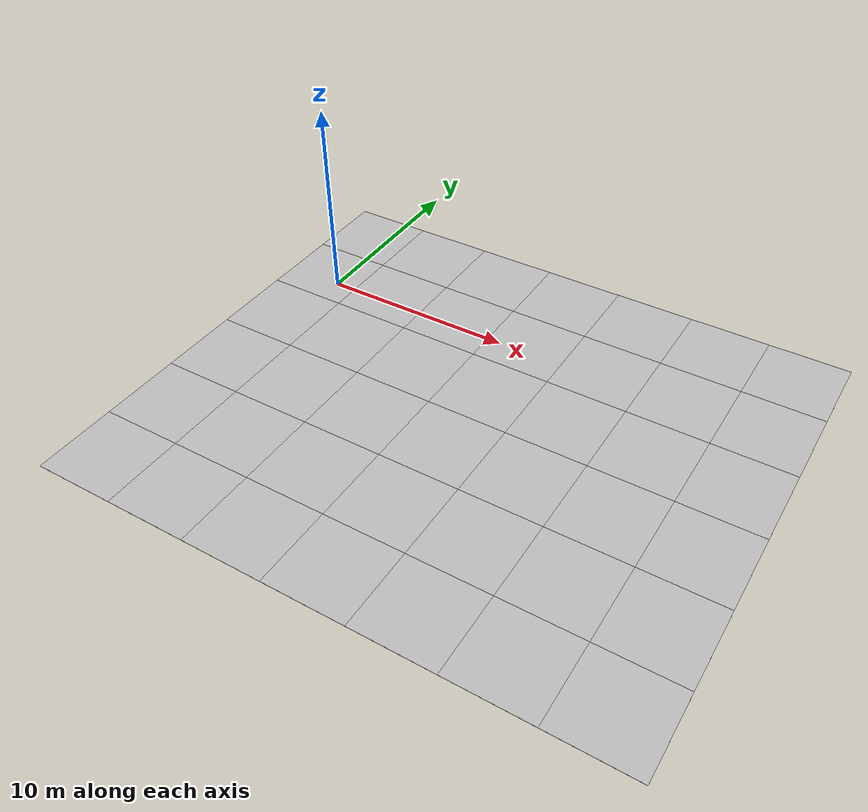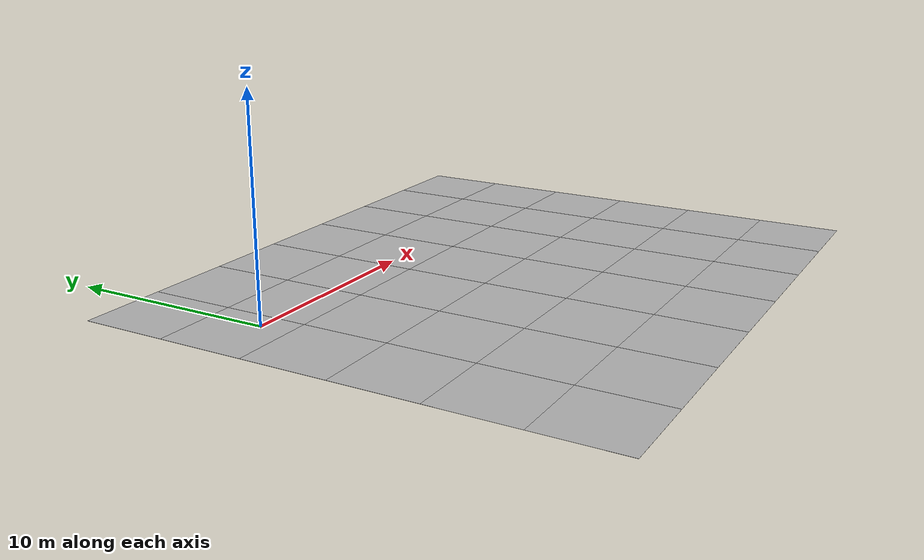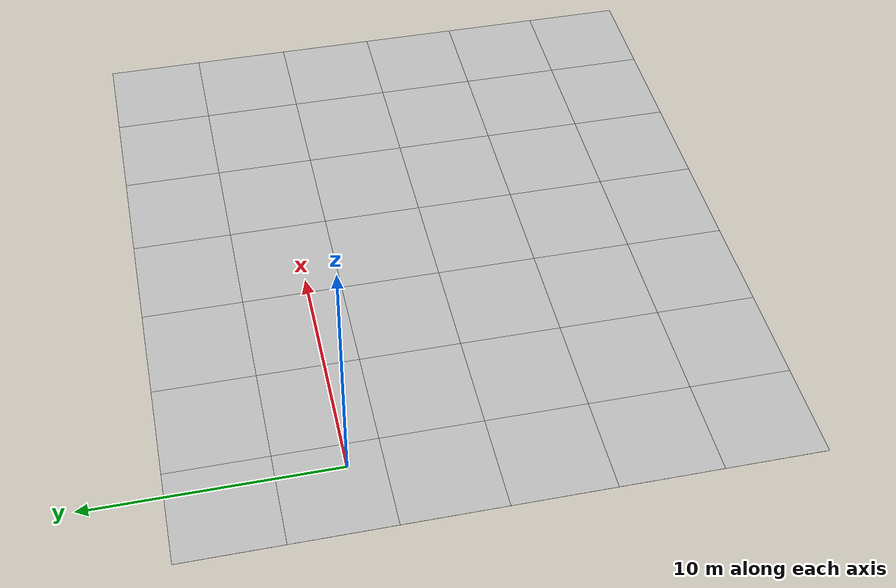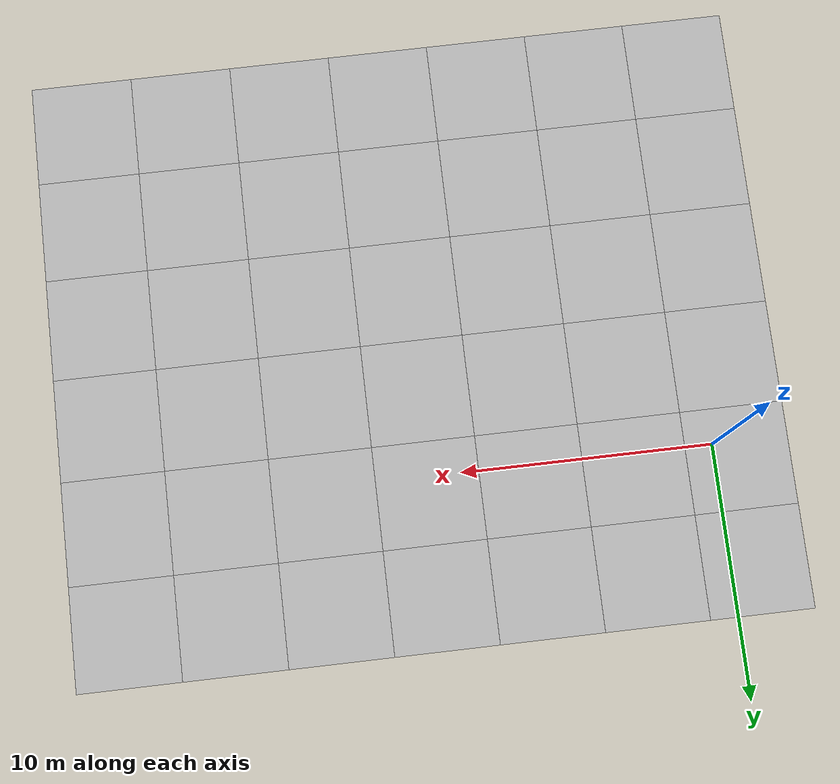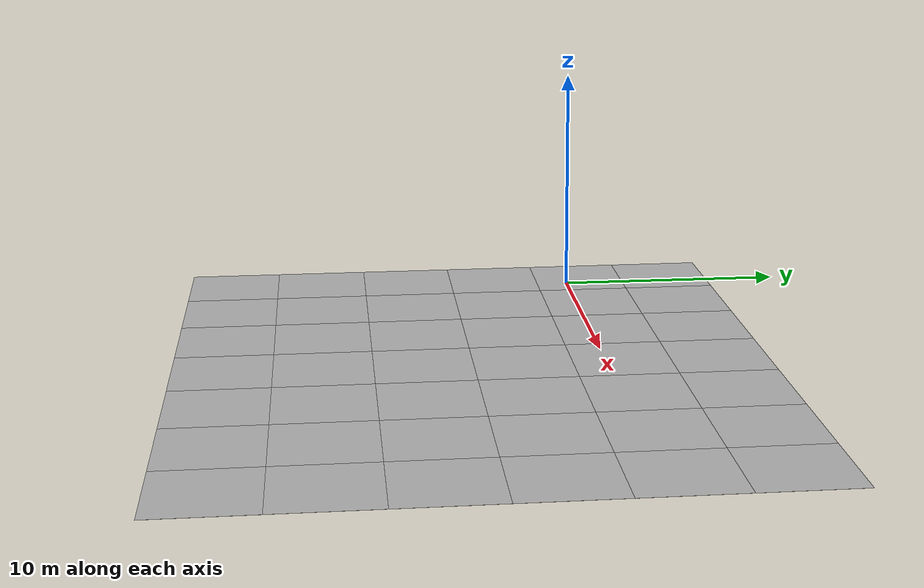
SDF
<sdf version='1.6'><world name='default'>
    <light name='sun_light' type='directional'>
      <pose frame=''>0 0 10 0 -0 0</pose>
      <diffuse>0.5 0.5 0.5 1</diffuse>
      <specular>0.1 0.1 0.1 1</specular>
      <direction>0.1 0.1 -0.9</direction>
      <attenuation>
        <range>20</range>
        <constant>0.5</constant>
        <linear>0.01</linear>
        <quadratic>0.001</quadratic>
      </attenuation>
      <cast_shadows>1</cast_shadows>
    </light>

    <model name='Tile/0-0'>
      <static>1</static>
      <link name='link'>
        <collision name='collision'>
          <geometry>
            <plane>
              <normal>0 0 1</normal>
              <size>4.096 4.096</size>
            </plane>
          </geometry>
          <surface>
            <friction>
              <ode>
                <mu>100</mu>
                <mu2>50</mu2>
              </ode>
              <torsional>
                <ode/>
              </torsional>
            </friction>
            <contact>
              <ode/>
            </contact>
            <bounce/>
          </surface>
          <max_contacts>10</max_contacts>
        </collision>
        <visual name='visual'>
          <cast_shadows>0</cast_shadows>
          <geometry>
            <plane>
              <normal>0 0 1</normal>
              <size>4.096 4.096</size>
            </plane>
          </geometry>
          <material>
            <script>
              <uri>file://materials/scripts</uri>
              <uri>file://materials/textures</uri>
              <name>Tile/5eab350b8220ac9944dbdfa4ac3288c7c17e24c3bf5df0dfcf6173d64dae00a1</name>
            </script>
          </material>
        </visual>
        <self_collide>0</self_collide>
        <enable_wind>0</enable_wind>
        <kinematic>0</kinematic>
      </link>
      <pose frame=''>-0.952 -15.739495373796553 0 0 -0 0</pose>
    </model>

    <model name='Tile/0-1'>
      <static>1</static>
      <link name='link'>
        <collision name='collision'>
          <geometry>
            <plane>
              <normal>0 0 1</normal>
              <size>4.096 4.096</size>
            </plane>
          </geometry>
          <surface>
            <friction>
              <ode>
                <mu>100</mu>
                <mu2>50</mu2>
              </ode>
              <torsional>
                <ode/>
              </torsional>
            </friction>
            <contact>
              <ode/>
            </contact>
            <bounce/>
          </surface>
          <max_contacts>10</max_contacts>
        </collision>
        <visual name='visual'>
          <cast_shadows>0</cast_shadows>
          <geometry>
            <plane>
              <normal>0 0 1</normal>
              <size>4.096 4.096</size>
            </plane>
          </geometry>
          <material>
            <script>
              <uri>file://materials/scripts</uri>
              <uri>file://materials/textures</uri>
              <name>Tile/5eab350b8220ac9944dbdfa4ac3288c7c17e24c3bf5df0dfcf6173d64dae00a1</name>
            </script>
          </material>
        </visual>
        <self_collide>0</self_collide>
        <enable_wind>0</enable_wind>
        <kinematic>0</kinematic>
      </link>
      <pose frame=''>-0.952 -11.643495373796553 0 0 -0 0</pose>
    </model>

    <model name='Tile/0-2'>
      <static>1</static>
      <link name='link'>
        <collision name='collision'>
          <geometry>
            <plane>
              <normal>0 0 1</normal>
              <size>4.096 4.096</size>
            </plane>
          </geometry>
          <surface>
            <friction>
              <ode>
                <mu>100</mu>
                <mu2>50</mu2>
              </ode>
              <torsional>
                <ode/>
              </torsional>
            </friction>
            <contact>
              <ode/>
            </contact>
            <bounce/>
          </surface>
          <max_contacts>10</max_contacts>
        </collision>
        <visual name='visual'>
          <cast_shadows>0</cast_shadows>
          <geometry>
            <plane>
              <normal>0 0 1</normal>
              <size>4.096 4.096</size>
            </plane>
          </geometry>
          <material>
            <script>
              <uri>file://materials/scripts</uri>
              <uri>file://materials/textures</uri>
              <name>Tile/5eab350b8220ac9944dbdfa4ac3288c7c17e24c3bf5df0dfcf6173d64dae00a1</name>
            </script>
          </material>
        </visual>
        <self_collide>0</self_collide>
        <enable_wind>0</enable_wind>
        <kinematic>0</kinematic>
      </link>
      <pose frame=''>-0.952 -7.547495373796552 0 0 -0 0</pose>
    </model>

    <model name='Tile/0-3'>
      <static>1</static>
      <link name='link'>
        <collision name='collision'>
          <geometry>
            <plane>
              <normal>0 0 1</normal>
              <size>4.096 4.096</size>
            </plane>
          </geometry>
          <surface>
            <friction>
              <ode>
                <mu>100</mu>
                <mu2>50</mu2>
              </ode>
              <torsional>
                <ode/>
              </torsional>
            </friction>
            <contact>
              <ode/>
            </contact>
            <bounce/>
          </surface>
          <max_contacts>10</max_contacts>
        </collision>
        <visual name='visual'>
          <cast_shadows>0</cast_shadows>
          <geometry>
            <plane>
              <normal>0 0 1</normal>
              <size>4.096 4.096</size>
            </plane>
          </geometry>
          <material>
            <script>
              <uri>file://materials/scripts</uri>
              <uri>file://materials/textures</uri>
              <name>Tile/5eab350b8220ac9944dbdfa4ac3288c7c17e24c3bf5df0dfcf6173d64dae00a1</name>
            </script>
          </material>
        </visual>
        <self_collide>0</self_collide>
        <enable_wind>0</enable_wind>
        <kinematic>0</kinematic>
      </link>
      <pose frame=''>-0.952 -3.4514953737965524 0 0 -0 0</pose>
    </model>

    <model name='Tile/0-4'>
      <static>1</static>
      <link name='link'>
        <collision name='collision'>
          <geometry>
            <plane>
              <normal>0 0 1</normal>
              <size>4.096 4.096</size>
            </plane>
          </geometry>
          <surface>
            <friction>
              <ode>
                <mu>100</mu>
                <mu2>50</mu2>
              </ode>
              <torsional>
                <ode/>
              </torsional>
            </friction>
            <contact>
              <ode/>
            </contact>
            <bounce/>
          </surface>
          <max_contacts>10</max_contacts>
        </collision>
        <visual name='visual'>
          <cast_shadows>0</cast_shadows>
          <geometry>
            <plane>
              <normal>0 0 1</normal>
              <size>4.096 4.096</size>
            </plane>
          </geometry>
          <material>
            <script>
              <uri>file://materials/scripts</uri>
              <uri>file://materials/textures</uri>
              <name>Tile/14b8432d31a1d6fac1c87e27125f163216128f25f7a4fc26318bab22ac04c2e1</name>
            </script>
          </material>
        </visual>
        <self_collide>0</self_collide>
        <enable_wind>0</enable_wind>
        <kinematic>0</kinematic>
      </link>
      <pose frame=''>-0.952 0.644504626203446 0 0 -0 0</pose>
    </model>

    <model name='Tile/0-5'>
      <static>1</static>
      <link name='link'>
        <collision name='collision'>
          <geometry>
            <plane>
              <normal>0 0 1</normal>
              <size>4.096 4.096</size>
            </plane>
          </geometry>
          <surface>
            <friction>
              <ode>
                <mu>100</mu>
                <mu2>50</mu2>
              </ode>
              <torsional>
                <ode/>
              </torsional>
            </friction>
            <contact>
              <ode/>
            </contact>
            <bounce/>
          </surface>
          <max_contacts>10</max_contacts>
        </collision>
        <visual name='visual'>
          <cast_shadows>0</cast_shadows>
          <geometry>
            <plane>
              <normal>0 0 1</normal>
              <size>4.096 4.096</size>
            </plane>
          </geometry>
          <material>
            <script>
              <uri>file://materials/scripts</uri>
              <uri>file://materials/textures</uri>
              <name>Tile/5eab350b8220ac9944dbdfa4ac3288c7c17e24c3bf5df0dfcf6173d64dae00a1</name>
            </script>
          </material>
        </visual>
        <self_collide>0</self_collide>
        <enable_wind>0</enable_wind>
        <kinematic>0</kinematic>
      </link>
      <pose frame=''>-0.952 4.740504626203446 0 0 -0 0</pose>
    </model>

    <model name='Tile/1-0'>
      <static>1</static>
      <link name='link'>
        <collision name='collision'>
          <geometry>
            <plane>
              <normal>0 0 1</normal>
              <size>4.096 4.096</size>
            </plane>
          </geometry>
          <surface>
            <friction>
              <ode>
                <mu>100</mu>
                <mu2>50</mu2>
              </ode>
              <torsional>
                <ode/>
              </torsional>
            </friction>
            <contact>
              <ode/>
            </contact>
            <bounce/>
          </surface>
          <max_contacts>10</max_contacts>
        </collision>
        <visual name='visual'>
          <cast_shadows>0</cast_shadows>
          <geometry>
            <plane>
              <normal>0 0 1</normal>
              <size>4.096 4.096</size>
            </plane>
          </geometry>
          <material>
            <script>
              <uri>file://materials/scripts</uri>
              <uri>file://materials/textures</uri>
              <name>Tile/5eab350b8220ac9944dbdfa4ac3288c7c17e24c3bf5df0dfcf6173d64dae00a1</name>
            </script>
          </material>
        </visual>
        <self_collide>0</self_collide>
        <enable_wind>0</enable_wind>
        <kinematic>0</kinematic>
      </link>
      <pose frame=''>3.144 -15.739495373796553 0 0 -0 0</pose>
    </model>

    <model name='Tile/1-1'>
      <static>1</static>
      <link name='link'>
        <collision name='collision'>
          <geometry>
            <plane>
              <normal>0 0 1</normal>
              <size>4.096 4.096</size>
            </plane>
          </geometry>
          <surface>
            <friction>
              <ode>
                <mu>100</mu>
                <mu2>50</mu2>
              </ode>
              <torsional>
                <ode/>
              </torsional>
            </friction>
            <contact>
              <ode/>
            </contact>
            <bounce/>
          </surface>
          <max_contacts>10</max_contacts>
        </collision>
        <visual name='visual'>
          <cast_shadows>0</cast_shadows>
          <geometry>
            <plane>
              <normal>0 0 1</normal>
              <size>4.096 4.096</size>
            </plane>
          </geometry>
          <material>
            <script>
              <uri>file://materials/scripts</uri>
              <uri>file://materials/textures</uri>
              <name>Tile/5eab350b8220ac9944dbdfa4ac3288c7c17e24c3bf5df0dfcf6173d64dae00a1</name>
            </script>
          </material>
        </visual>
        <self_collide>0</self_collide>
        <enable_wind>0</enable_wind>
        <kinematic>0</kinematic>
      </link>
      <pose frame=''>3.144 -11.643495373796553 0 0 -0 0</pose>
    </model>

    <model name='Tile/1-2'>
      <static>1</static>
      <link name='link'>
        <collision name='collision'>
          <geometry>
            <plane>
              <normal>0 0 1</normal>
              <size>4.096 4.096</size>
            </plane>
          </geometry>
          <surface>
            <friction>
              <ode>
                <mu>100</mu>
                <mu2>50</mu2>
              </ode>
              <torsional>
                <ode/>
              </torsional>
            </friction>
            <contact>
              <ode/>
            </contact>
            <bounce/>
          </surface>
          <max_contacts>10</max_contacts>
        </collision>
        <visual name='visual'>
          <cast_shadows>0</cast_shadows>
          <geometry>
            <plane>
              <normal>0 0 1</normal>
              <size>4.096 4.096</size>
            </plane>
          </geometry>
          <material>
            <script>
              <uri>file://materials/scripts</uri>
              <uri>file://materials/textures</uri>
              <name>Tile/5eab350b8220ac9944dbdfa4ac3288c7c17e24c3bf5df0dfcf6173d64dae00a1</name>
            </script>
          </material>
        </visual>
        <self_collide>0</self_collide>
        <enable_wind>0</enable_wind>
        <kinematic>0</kinematic>
      </link>
      <pose frame=''>3.144 -7.547495373796552 0 0 -0 0</pose>
    </model>

    <model name='Tile/1-3'>
      <static>1</static>
      <link name='link'>
        <collision name='collision'>
          <geometry>
            <plane>
              <normal>0 0 1</normal>
              <size>4.096 4.096</size>
            </plane>
          </geometry>
          <surface>
            <friction>
              <ode>
                <mu>100</mu>
                <mu2>50</mu2>
              </ode>
              <torsional>
                <ode/>
              </torsional>
            </friction>
            <contact>
              <ode/>
            </contact>
            <bounce/>
          </surface>
          <max_contacts>10</max_contacts>
        </collision>
        <visual name='visual'>
          <cast_shadows>0</cast_shadows>
          <geometry>
            <plane>
              <normal>0 0 1</normal>
              <size>4.096 4.096</size>
            </plane>
          </geometry>
          <material>
            <script>
              <uri>file://materials/scripts</uri>
              <uri>file://materials/textures</uri>
              <name>Tile/5eab350b8220ac9944dbdfa4ac3288c7c17e24c3bf5df0dfcf6173d64dae00a1</name>
            </script>
          </material>
        </visual>
        <self_collide>0</self_collide>
        <enable_wind>0</enable_wind>
        <kinematic>0</kinematic>
      </link>
      <pose frame=''>3.144 -3.4514953737965524 0 0 -0 0</pose>
    </model>

    <model name='Tile/1-4'>
      <static>1</static>
      <link name='link'>
        <collision name='collision'>
          <geometry>
            <plane>
              <normal>0 0 1</normal>
              <size>4.096 4.096</size>
            </plane>
          </geometry>
          <surface>
            <friction>
              <ode>
                <mu>100</mu>
                <mu2>50</mu2>
              </ode>
              <torsional>
                <ode/>
              </torsional>
            </friction>
            <contact>
              <ode/>
            </contact>
            <bounce/>
          </surface>
          <max_contacts>10</max_contacts>
        </collision>
        <visual name='visual'>
          <cast_shadows>0</cast_shadows>
          <geometry>
            <plane>
              <normal>0 0 1</normal>
              <size>4.096 4.096</size>
            </plane>
          </geometry>
          <material>
            <script>
              <uri>file://materials/scripts</uri>
              <uri>file://materials/textures</uri>
              <name>Tile/878bee74b3ee028b9e9a00e876ac14918a3bb0f2ab732c710214c3dfcfb4f7a6</name>
            </script>
          </material>
        </visual>
        <self_collide>0</self_collide>
        <enable_wind>0</enable_wind>
        <kinematic>0</kinematic>
      </link>
      <pose frame=''>3.144 0.644504626203446 0 0 -0 0</pose>
    </model>

    <model name='Tile/1-5'>
      <static>1</static>
      <link name='link'>
        <collision name='collision'>
          <geometry>
            <plane>
              <normal>0 0 1</normal>
              <size>4.096 4.096</size>
            </plane>
          </geometry>
          <surface>
            <friction>
              <ode>
                <mu>100</mu>
                <mu2>50</mu2>
              </ode>
              <torsional>
                <ode/>
              </torsional>
            </friction>
            <contact>
              <ode/>
            </contact>
            <bounce/>
          </surface>
          <max_contacts>10</max_contacts>
        </collision>
        <visual name='visual'>
          <cast_shadows>0</cast_shadows>
          <geometry>
            <plane>
              <normal>0 0 1</normal>
              <size>4.096 4.096</size>
            </plane>
          </geometry>
          <material>
            <script>
              <uri>file://materials/scripts</uri>
              <uri>file://materials/textures</uri>
              <name>Tile/5eab350b8220ac9944dbdfa4ac3288c7c17e24c3bf5df0dfcf6173d64dae00a1</name>
            </script>
          </material>
        </visual>
        <self_collide>0</self_collide>
        <enable_wind>0</enable_wind>
        <kinematic>0</kinematic>
      </link>
      <pose frame=''>3.144 4.740504626203446 0 0 -0 0</pose>
    </model>

    <model name='Tile/2-0'>
      <static>1</static>
      <link name='link'>
        <collision name='collision'>
          <geometry>
            <plane>
              <normal>0 0 1</normal>
              <size>4.096 4.096</size>
            </plane>
          </geometry>
          <surface>
            <friction>
              <ode>
                <mu>100</mu>
                <mu2>50</mu2>
              </ode>
              <torsional>
                <ode/>
              </torsional>
            </friction>
            <contact>
              <ode/>
            </contact>
            <bounce/>
          </surface>
          <max_contacts>10</max_contacts>
        </collision>
        <visual name='visual'>
          <cast_shadows>0</cast_shadows>
          <geometry>
            <plane>
              <normal>0 0 1</normal>
              <size>4.096 4.096</size>
            </plane>
          </geometry>
          <material>
            <script>
              <uri>file://materials/scripts</uri>
              <uri>file://materials/textures</uri>
              <name>Tile/5eab350b8220ac9944dbdfa4ac3288c7c17e24c3bf5df0dfcf6173d64dae00a1</name>
            </script>
          </material>
        </visual>
        <self_collide>0</self_collide>
        <enable_wind>0</enable_wind>
        <kinematic>0</kinematic>
      </link>
      <pose frame=''>7.24 -15.739495373796553 0 0 -0 0</pose>
    </model>

    <model name='Tile/2-1'>
      <static>1</static>
      <link name='link'>
        <collision name='collision'>
          <geometry>
            <plane>
              <normal>0 0 1</normal>
              <size>4.096 4.096</size>
            </plane>
          </geometry>
          <surface>
            <friction>
              <ode>
                <mu>100</mu>
                <mu2>50</mu2>
              </ode>
              <torsional>
                <ode/>
              </torsional>
            </friction>
            <contact>
              <ode/>
            </contact>
            <bounce/>
          </surface>
          <max_contacts>10</max_contacts>
        </collision>
        <visual name='visual'>
          <cast_shadows>0</cast_shadows>
          <geometry>
            <plane>
              <normal>0 0 1</normal>
              <size>4.096 4.096</size>
            </plane>
          </geometry>
          <material>
            <script>
              <uri>file://materials/scripts</uri>
              <uri>file://materials/textures</uri>
              <name>Tile/5eab350b8220ac9944dbdfa4ac3288c7c17e24c3bf5df0dfcf6173d64dae00a1</name>
            </script>
          </material>
        </visual>
        <self_collide>0</self_collide>
        <enable_wind>0</enable_wind>
        <kinematic>0</kinematic>
      </link>
      <pose frame=''>7.24 -11.643495373796553 0 0 -0 0</pose>
    </model>

    <model name='Tile/2-2'>
      <static>1</static>
      <link name='link'>
        <collision name='collision'>
          <geometry>
            <plane>
              <normal>0 0 1</normal>
              <size>4.096 4.096</size>
            </plane>
          </geometry>
          <surface>
            <friction>
              <ode>
                <mu>100</mu>
                <mu2>50</mu2>
              </ode>
              <torsional>
                <ode/>
              </torsional>
            </friction>
            <contact>
              <ode/>
            </contact>
            <bounce/>
          </surface>
          <max_contacts>10</max_contacts>
        </collision>
        <visual name='visual'>
          <cast_shadows>0</cast_shadows>
          <geometry>
            <plane>
              <normal>0 0 1</normal>
              <size>4.096 4.096</size>
            </plane>
          </geometry>
          <material>
            <script>
              <uri>file://materials/scripts</uri>
              <uri>file://materials/textures</uri>
              <name>Tile/5eab350b8220ac9944dbdfa4ac3288c7c17e24c3bf5df0dfcf6173d64dae00a1</name>
            </script>
          </material>
        </visual>
        <self_collide>0</self_collide>
        <enable_wind>0</enable_wind>
        <kinematic>0</kinematic>
      </link>
      <pose frame=''>7.24 -7.547495373796552 0 0 -0 0</pose>
    </model>

    <model name='Tile/2-3'>
      <static>1</static>
      <link name='link'>
        <collision name='collision'>
          <geometry>
            <plane>
              <normal>0 0 1</normal>
              <size>4.096 4.096</size>
            </plane>
          </geometry>
          <surface>
            <friction>
              <ode>
                <mu>100</mu>
                <mu2>50</mu2>
              </ode>
              <torsional>
                <ode/>
              </torsional>
            </friction>
            <contact>
              <ode/>
            </contact>
            <bounce/>
          </surface>
          <max_contacts>10</max_contacts>
        </collision>
        <visual name='visual'>
          <cast_shadows>0</cast_shadows>
          <geometry>
            <plane>
              <normal>0 0 1</normal>
              <size>4.096 4.096</size>
            </plane>
          </geometry>
          <material>
            <script>
              <uri>file://materials/scripts</uri>
              <uri>file://materials/textures</uri>
              <name>Tile/d3a24f058b16af4eeb9872d2759b28b1b9a896e9561f282e2a09058c9b80bb32</name>
            </script>
          </material>
        </visual>
        <self_collide>0</self_collide>
        <enable_wind>0</enable_wind>
        <kinematic>0</kinematic>
      </link>
      <pose frame=''>7.24 -3.4514953737965524 0 0 -0 0</pose>
    </model>

    <model name='Tile/2-4'>
      <static>1</static>
      <link name='link'>
        <collision name='collision'>
          <geometry>
            <plane>
              <normal>0 0 1</normal>
              <size>4.096 4.096</size>
            </plane>
          </geometry>
          <surface>
            <friction>
              <ode>
                <mu>100</mu>
                <mu2>50</mu2>
              </ode>
              <torsional>
                <ode/>
              </torsional>
            </friction>
            <contact>
              <ode/>
            </contact>
            <bounce/>
          </surface>
          <max_contacts>10</max_contacts>
        </collision>
        <visual name='visual'>
          <cast_shadows>0</cast_shadows>
          <geometry>
            <plane>
              <normal>0 0 1</normal>
              <size>4.096 4.096</size>
            </plane>
          </geometry>
          <material>
            <script>
              <uri>file://materials/scripts</uri>
              <uri>file://materials/textures</uri>
              <name>Tile/b513ee901512c7647270c55b959f5c6b872e3d145c3a56658021d5f88b06cde2</name>
            </script>
          </material>
        </visual>
        <self_collide>0</self_collide>
        <enable_wind>0</enable_wind>
        <kinematic>0</kinematic>
      </link>
      <pose frame=''>7.24 0.644504626203446 0 0 -0 0</pose>
    </model>

    <model name='Tile/2-5'>
      <static>1</static>
      <link name='link'>
        <collision name='collision'>
          <geometry>
            <plane>
              <normal>0 0 1</normal>
              <size>4.096 4.096</size>
            </plane>
          </geometry>
          <surface>
            <friction>
              <ode>
                <mu>100</mu>
                <mu2>50</mu2>
              </ode>
              <torsional>
                <ode/>
              </torsional>
            </friction>
            <contact>
              <ode/>
            </contact>
            <bounce/>
          </surface>
          <max_contacts>10</max_contacts>
        </collision>
        <visual name='visual'>
          <cast_shadows>0</cast_shadows>
          <geometry>
            <plane>
              <normal>0 0 1</normal>
              <size>4.096 4.096</size>
            </plane>
          </geometry>
          <material>
            <script>
              <uri>file://materials/scripts</uri>
              <uri>file://materials/textures</uri>
              <name>Tile/5eab350b8220ac9944dbdfa4ac3288c7c17e24c3bf5df0dfcf6173d64dae00a1</name>
            </script>
          </material>
        </visual>
        <self_collide>0</self_collide>
        <enable_wind>0</enable_wind>
        <kinematic>0</kinematic>
      </link>
      <pose frame=''>7.24 4.740504626203446 0 0 -0 0</pose>
    </model>

    <model name='Tile/3-0'>
      <static>1</static>
      <link name='link'>
        <collision name='collision'>
          <geometry>
            <plane>
              <normal>0 0 1</normal>
              <size>4.096 4.096</size>
            </plane>
          </geometry>
          <surface>
            <friction>
              <ode>
                <mu>100</mu>
                <mu2>50</mu2>
              </ode>
              <torsional>
                <ode/>
              </torsional>
            </friction>
            <contact>
              <ode/>
            </contact>
            <bounce/>
          </surface>
          <max_contacts>10</max_contacts>
        </collision>
        <visual name='visual'>
          <cast_shadows>0</cast_shadows>
          <geometry>
            <plane>
              <normal>0 0 1</normal>
              <size>4.096 4.096</size>
            </plane>
          </geometry>
          <material>
            <script>
              <uri>file://materials/scripts</uri>
              <uri>file://materials/textures</uri>
              <name>Tile/5eab350b8220ac9944dbdfa4ac3288c7c17e24c3bf5df0dfcf6173d64dae00a1</name>
            </script>
          </material>
        </visual>
        <self_collide>0</self_collide>
        <enable_wind>0</enable_wind>
        <kinematic>0</kinematic>
      </link>
      <pose frame=''>11.336 -15.739495373796553 0 0 -0 0</pose>
    </model>

    <model name='Tile/3-1'>
      <static>1</static>
      <link name='link'>
        <collision name='collision'>
          <geometry>
            <plane>
              <normal>0 0 1</normal>
              <size>4.096 4.096</size>
            </plane>
          </geometry>
          <surface>
            <friction>
              <ode>
                <mu>100</mu>
                <mu2>50</mu2>
              </ode>
              <torsional>
                <ode/>
              </torsional>
            </friction>
            <contact>
              <ode/>
            </contact>
            <bounce/>
          </surface>
          <max_contacts>10</max_contacts>
        </collision>
        <visual name='visual'>
          <cast_shadows>0</cast_shadows>
          <geometry>
            <plane>
              <normal>0 0 1</normal>
              <size>4.096 4.096</size>
            </plane>
          </geometry>
          <material>
            <script>
              <uri>file://materials/scripts</uri>
              <uri>file://materials/textures</uri>
              <name>Tile/5eab350b8220ac9944dbdfa4ac3288c7c17e24c3bf5df0dfcf6173d64dae00a1</name>
            </script>
          </material>
        </visual>
        <self_collide>0</self_collide>
        <enable_wind>0</enable_wind>
        <kinematic>0</kinematic>
      </link>
      <pose frame=''>11.336 -11.643495373796553 0 0 -0 0</pose>
    </model>

    <model name='Tile/3-2'>
      <static>1</static>
      <link name='link'>
        <collision name='collision'>
          <geometry>
            <plane>
              <normal>0 0 1</normal>
              <size>4.096 4.096</size>
            </plane>
          </geometry>
          <surface>
            <friction>
              <ode>
                <mu>100</mu>
                <mu2>50</mu2>
              </ode>
              <torsional>
                <ode/>
              </torsional>
            </friction>
            <contact>
              <ode/>
            </contact>
            <bounce/>
          </surface>
          <max_contacts>10</max_contacts>
        </collision>
        <visual name='visual'>
          <cast_shadows>0</cast_shadows>
          <geometry>
            <plane>
              <normal>0 0 1</normal>
              <size>4.096 4.096</size>
            </plane>
          </geometry>
          <material>
            <script>
              <uri>file://materials/scripts</uri>
              <uri>file://materials/textures</uri>
              <name>Tile/5eab350b8220ac9944dbdfa4ac3288c7c17e24c3bf5df0dfcf6173d64dae00a1</name>
            </script>
          </material>
        </visual>
        <self_collide>0</self_collide>
        <enable_wind>0</enable_wind>
        <kinematic>0</kinematic>
      </link>
      <pose frame=''>11.336 -7.547495373796552 0 0 -0 0</pose>
    </model>

    <model name='Tile/3-3'>
      <static>1</static>
      <link name='link'>
        <collision name='collision'>
          <geometry>
            <plane>
              <normal>0 0 1</normal>
              <size>4.096 4.096</size>
            </plane>
          </geometry>
          <surface>
            <friction>
              <ode>
                <mu>100</mu>
                <mu2>50</mu2>
              </ode>
              <torsional>
                <ode/>
              </torsional>
            </friction>
            <contact>
              <ode/>
            </contact>
            <bounce/>
          </surface>
          <max_contacts>10</max_contacts>
        </collision>
        <visual name='visual'>
          <cast_shadows>0</cast_shadows>
          <geometry>
            <plane>
              <normal>0 0 1</normal>
              <size>4.096 4.096</size>
            </plane>
          </geometry>
          <material>
            <script>
              <uri>file://materials/scripts</uri>
              <uri>file://materials/textures</uri>
              <name>Tile/1135e07e5bec506245f5a1d9577f95b04f5fc16d03b39a7041281c95b07b5710</name>
            </script>
          </material>
        </visual>
        <self_collide>0</self_collide>
        <enable_wind>0</enable_wind>
        <kinematic>0</kinematic>
      </link>
      <pose frame=''>11.336 -3.4514953737965524 0 0 -0 0</pose>
    </model>

    <model name='Tile/3-4'>
      <static>1</static>
      <link name='link'>
        <collision name='collision'>
          <geometry>
            <plane>
              <normal>0 0 1</normal>
              <size>4.096 4.096</size>
            </plane>
          </geometry>
          <surface>
            <friction>
              <ode>
                <mu>100</mu>
                <mu2>50</mu2>
              </ode>
              <torsional>
                <ode/>
              </torsional>
            </friction>
            <contact>
              <ode/>
            </contact>
            <bounce/>
          </surface>
          <max_contacts>10</max_contacts>
        </collision>
        <visual name='visual'>
          <cast_shadows>0</cast_shadows>
          <geometry>
            <plane>
              <normal>0 0 1</normal>
              <size>4.096 4.096</size>
            </plane>
          </geometry>
          <material>
            <script>
              <uri>file://materials/scripts</uri>
              <uri>file://materials/textures</uri>
              <name>Tile/e31e0384fc2411d605b3bb9a3ecd47f5dfb0c1c68bba2dd0dc3c22d9bbac51eb</name>
            </script>
          </material>
        </visual>
        <self_collide>0</self_collide>
        <enable_wind>0</enable_wind>
        <kinematic>0</kinematic>
      </link>
      <pose frame=''>11.336 0.644504626203446 0 0 -0 0</pose>
    </model>

    <model name='Tile/3-5'>
      <static>1</static>
      <link name='link'>
        <collision name='collision'>
          <geometry>
            <plane>
              <normal>0 0 1</normal>
              <size>4.096 4.096</size>
            </plane>
          </geometry>
          <surface>
            <friction>
              <ode>
                <mu>100</mu>
                <mu2>50</mu2>
              </ode>
              <torsional>
                <ode/>
              </torsional>
            </friction>
            <contact>
              <ode/>
            </contact>
            <bounce/>
          </surface>
          <max_contacts>10</max_contacts>
        </collision>
        <visual name='visual'>
          <cast_shadows>0</cast_shadows>
          <geometry>
            <plane>
              <normal>0 0 1</normal>
              <size>4.096 4.096</size>
            </plane>
          </geometry>
          <material>
            <script>
              <uri>file://materials/scripts</uri>
              <uri>file://materials/textures</uri>
              <name>Tile/5eab350b8220ac9944dbdfa4ac3288c7c17e24c3bf5df0dfcf6173d64dae00a1</name>
            </script>
          </material>
        </visual>
        <self_collide>0</self_collide>
        <enable_wind>0</enable_wind>
        <kinematic>0</kinematic>
      </link>
      <pose frame=''>11.336 4.740504626203446 0 0 -0 0</pose>
    </model>

    <model name='Tile/4-0'>
      <static>1</static>
      <link name='link'>
        <collision name='collision'>
          <geometry>
            <plane>
              <normal>0 0 1</normal>
              <size>4.096 4.096</size>
            </plane>
          </geometry>
          <surface>
            <friction>
              <ode>
                <mu>100</mu>
                <mu2>50</mu2>
              </ode>
              <torsional>
                <ode/>
              </torsional>
            </friction>
            <contact>
              <ode/>
            </contact>
            <bounce/>
          </surface>
          <max_contacts>10</max_contacts>
        </collision>
        <visual name='visual'>
          <cast_shadows>0</cast_shadows>
          <geometry>
            <plane>
              <normal>0 0 1</normal>
              <size>4.096 4.096</size>
            </plane>
          </geometry>
          <material>
            <script>
              <uri>file://materials/scripts</uri>
              <uri>file://materials/textures</uri>
              <name>Tile/5eab350b8220ac9944dbdfa4ac3288c7c17e24c3bf5df0dfcf6173d64dae00a1</name>
            </script>
          </material>
        </visual>
        <self_collide>0</self_collide>
        <enable_wind>0</enable_wind>
        <kinematic>0</kinematic>
      </link>
      <pose frame=''>15.431999999999999 -15.739495373796553 0 0 -0 0</pose>
    </model>

    <model name='Tile/4-1'>
      <static>1</static>
      <link name='link'>
        <collision name='collision'>
          <geometry>
            <plane>
              <normal>0 0 1</normal>
              <size>4.096 4.096</size>
            </plane>
          </geometry>
          <surface>
            <friction>
              <ode>
                <mu>100</mu>
                <mu2>50</mu2>
              </ode>
              <torsional>
                <ode/>
              </torsional>
            </friction>
            <contact>
              <ode/>
            </contact>
            <bounce/>
          </surface>
          <max_contacts>10</max_contacts>
        </collision>
        <visual name='visual'>
          <cast_shadows>0</cast_shadows>
          <geometry>
            <plane>
              <normal>0 0 1</normal>
              <size>4.096 4.096</size>
            </plane>
          </geometry>
          <material>
            <script>
              <uri>file://materials/scripts</uri>
              <uri>file://materials/textures</uri>
              <name>Tile/5eab350b8220ac9944dbdfa4ac3288c7c17e24c3bf5df0dfcf6173d64dae00a1</name>
            </script>
          </material>
        </visual>
        <self_collide>0</self_collide>
        <enable_wind>0</enable_wind>
        <kinematic>0</kinematic>
      </link>
      <pose frame=''>15.431999999999999 -11.643495373796553 0 0 -0 0</pose>
    </model>

    <model name='Tile/4-2'>
      <static>1</static>
      <link name='link'>
        <collision name='collision'>
          <geometry>
            <plane>
              <normal>0 0 1</normal>
              <size>4.096 4.096</size>
            </plane>
          </geometry>
          <surface>
            <friction>
              <ode>
                <mu>100</mu>
                <mu2>50</mu2>
              </ode>
              <torsional>
                <ode/>
              </torsional>
            </friction>
            <contact>
              <ode/>
            </contact>
            <bounce/>
          </surface>
          <max_contacts>10</max_contacts>
        </collision>
        <visual name='visual'>
          <cast_shadows>0</cast_shadows>
          <geometry>
            <plane>
              <normal>0 0 1</normal>
              <size>4.096 4.096</size>
            </plane>
          </geometry>
          <material>
            <script>
              <uri>file://materials/scripts</uri>
              <uri>file://materials/textures</uri>
              <name>Tile/5eab350b8220ac9944dbdfa4ac3288c7c17e24c3bf5df0dfcf6173d64dae00a1</name>
            </script>
          </material>
        </visual>
        <self_collide>0</self_collide>
        <enable_wind>0</enable_wind>
        <kinematic>0</kinematic>
      </link>
      <pose frame=''>15.431999999999999 -7.547495373796552 0 0 -0 0</pose>
    </model>

    <model name='Tile/4-3'>
      <static>1</static>
      <link name='link'>
        <collision name='collision'>
          <geometry>
            <plane>
              <normal>0 0 1</normal>
              <size>4.096 4.096</size>
            </plane>
          </geometry>
          <surface>
            <friction>
              <ode>
                <mu>100</mu>
                <mu2>50</mu2>
              </ode>
              <torsional>
                <ode/>
              </torsional>
            </friction>
            <contact>
              <ode/>
            </contact>
            <bounce/>
          </surface>
          <max_contacts>10</max_contacts>
        </collision>
        <visual name='visual'>
          <cast_shadows>0</cast_shadows>
          <geometry>
            <plane>
              <normal>0 0 1</normal>
              <size>4.096 4.096</size>
            </plane>
          </geometry>
          <material>
            <script>
              <uri>file://materials/scripts</uri>
              <uri>file://materials/textures</uri>
              <name>Tile/056bd35b465e81ab14ecf33cc2de19b06c736a9d5adec957e1c6535e0ba0858c</name>
            </script>
          </material>
        </visual>
        <self_collide>0</self_collide>
        <enable_wind>0</enable_wind>
        <kinematic>0</kinematic>
      </link>
      <pose frame=''>15.431999999999999 -3.4514953737965524 0 0 -0 0</pose>
    </model>

    <model name='Tile/4-4'>
      <static>1</static>
      <link name='link'>
        <collision name='collision'>
          <geometry>
            <plane>
              <normal>0 0 1</normal>
              <size>4.096 4.096</size>
            </plane>
          </geometry>
          <surface>
            <friction>
              <ode>
                <mu>100</mu>
                <mu2>50</mu2>
              </ode>
              <torsional>
                <ode/>
              </torsional>
            </friction>
            <contact>
              <ode/>
            </contact>
            <bounce/>
          </surface>
          <max_contacts>10</max_contacts>
        </collision>
        <visual name='visual'>
          <cast_shadows>0</cast_shadows>
          <geometry>
            <plane>
              <normal>0 0 1</normal>
              <size>4.096 4.096</size>
            </plane>
          </geometry>
          <material>
            <script>
              <uri>file://materials/scripts</uri>
              <uri>file://materials/textures</uri>
              <name>Tile/d68eeffd3760011801aa37861dbd4e066027ec913f23bb2656761c3df68dc7f0</name>
            </script>
          </material>
        </visual>
        <self_collide>0</self_collide>
        <enable_wind>0</enable_wind>
        <kinematic>0</kinematic>
      </link>
      <pose frame=''>15.431999999999999 0.644504626203446 0 0 -0 0</pose>
    </model>

    <model name='Tile/4-5'>
      <static>1</static>
      <link name='link'>
        <collision name='collision'>
          <geometry>
            <plane>
              <normal>0 0 1</normal>
              <size>4.096 4.096</size>
            </plane>
          </geometry>
          <surface>
            <friction>
              <ode>
                <mu>100</mu>
                <mu2>50</mu2>
              </ode>
              <torsional>
                <ode/>
              </torsional>
            </friction>
            <contact>
              <ode/>
            </contact>
            <bounce/>
          </surface>
          <max_contacts>10</max_contacts>
        </collision>
        <visual name='visual'>
          <cast_shadows>0</cast_shadows>
          <geometry>
            <plane>
              <normal>0 0 1</normal>
              <size>4.096 4.096</size>
            </plane>
          </geometry>
          <material>
            <script>
              <uri>file://materials/scripts</uri>
              <uri>file://materials/textures</uri>
              <name>Tile/5eab350b8220ac9944dbdfa4ac3288c7c17e24c3bf5df0dfcf6173d64dae00a1</name>
            </script>
          </material>
        </visual>
        <self_collide>0</self_collide>
        <enable_wind>0</enable_wind>
        <kinematic>0</kinematic>
      </link>
      <pose frame=''>15.431999999999999 4.740504626203446 0 0 -0 0</pose>
    </model>

    <model name='Tile/5-0'>
      <static>1</static>
      <link name='link'>
        <collision name='collision'>
          <geometry>
            <plane>
              <normal>0 0 1</normal>
              <size>4.096 4.096</size>
            </plane>
          </geometry>
          <surface>
            <friction>
              <ode>
                <mu>100</mu>
                <mu2>50</mu2>
              </ode>
              <torsional>
                <ode/>
              </torsional>
            </friction>
            <contact>
              <ode/>
            </contact>
            <bounce/>
          </surface>
          <max_contacts>10</max_contacts>
        </collision>
        <visual name='visual'>
          <cast_shadows>0</cast_shadows>
          <geometry>
            <plane>
              <normal>0 0 1</normal>
              <size>4.096 4.096</size>
            </plane>
          </geometry>
          <material>
            <script>
              <uri>file://materials/scripts</uri>
              <uri>file://materials/textures</uri>
              <name>Tile/2ec08986ca98360d5a5d74ee1ad3ba306edd58833076e133a5c4be5126d8f82c</name>
            </script>
          </material>
        </visual>
        <self_collide>0</self_collide>
        <enable_wind>0</enable_wind>
        <kinematic>0</kinematic>
      </link>
      <pose frame=''>19.528 -15.739495373796553 0 0 -0 0</pose>
    </model>

    <model name='Tile/5-1'>
      <static>1</static>
      <link name='link'>
        <collision name='collision'>
          <geometry>
            <plane>
              <normal>0 0 1</normal>
              <size>4.096 4.096</size>
            </plane>
          </geometry>
          <surface>
            <friction>
              <ode>
                <mu>100</mu>
                <mu2>50</mu2>
              </ode>
              <torsional>
                <ode/>
              </torsional>
            </friction>
            <contact>
              <ode/>
            </contact>
            <bounce/>
          </surface>
          <max_contacts>10</max_contacts>
        </collision>
        <visual name='visual'>
          <cast_shadows>0</cast_shadows>
          <geometry>
            <plane>
              <normal>0 0 1</normal>
              <size>4.096 4.096</size>
            </plane>
          </geometry>
          <material>
            <script>
              <uri>file://materials/scripts</uri>
              <uri>file://materials/textures</uri>
              <name>Tile/ee16aa82f382466db8e866c57e656f26e79a76b34656010462c9118632d98af5</name>
            </script>
          </material>
        </visual>
        <self_collide>0</self_collide>
        <enable_wind>0</enable_wind>
        <kinematic>0</kinematic>
      </link>
      <pose frame=''>19.528 -11.643495373796553 0 0 -0 0</pose>
    </model>

    <model name='Tile/5-2'>
      <static>1</static>
      <link name='link'>
        <collision name='collision'>
          <geometry>
            <plane>
              <normal>0 0 1</normal>
              <size>4.096 4.096</size>
            </plane>
          </geometry>
          <surface>
            <friction>
              <ode>
                <mu>100</mu>
                <mu2>50</mu2>
              </ode>
              <torsional>
                <ode/>
              </torsional>
            </friction>
            <contact>
              <ode/>
            </contact>
            <bounce/>
          </surface>
          <max_contacts>10</max_contacts>
        </collision>
        <visual name='visual'>
          <cast_shadows>0</cast_shadows>
          <geometry>
            <plane>
              <normal>0 0 1</normal>
              <size>4.096 4.096</size>
            </plane>
          </geometry>
          <material>
            <script>
              <uri>file://materials/scripts</uri>
              <uri>file://materials/textures</uri>
              <name>Tile/df28ad461534d12e5c6a2f80f4819c6cfa974086e6d0db0335294d1da7be536d</name>
            </script>
          </material>
        </visual>
        <self_collide>0</self_collide>
        <enable_wind>0</enable_wind>
        <kinematic>0</kinematic>
      </link>
      <pose frame=''>19.528 -7.547495373796552 0 0 -0 0</pose>
    </model>

    <model name='Tile/5-3'>
      <static>1</static>
      <link name='link'>
        <collision name='collision'>
          <geometry>
            <plane>
              <normal>0 0 1</normal>
              <size>4.096 4.096</size>
            </plane>
          </geometry>
          <surface>
            <friction>
              <ode>
                <mu>100</mu>
                <mu2>50</mu2>
              </ode>
              <torsional>
                <ode/>
              </torsional>
            </friction>
            <contact>
              <ode/>
            </contact>
            <bounce/>
          </surface>
          <max_contacts>10</max_contacts>
        </collision>
        <visual name='visual'>
          <cast_shadows>0</cast_shadows>
          <geometry>
            <plane>
              <normal>0 0 1</normal>
              <size>4.096 4.096</size>
            </plane>
          </geometry>
          <material>
            <script>
              <uri>file://materials/scripts</uri>
              <uri>file://materials/textures</uri>
              <name>Tile/c4f2c088cdb27a0e153e25df3cdb0266dabb4e896241648c9b264016d75d3d79</name>
            </script>
          </material>
        </visual>
        <self_collide>0</self_collide>
        <enable_wind>0</enable_wind>
        <kinematic>0</kinematic>
      </link>
      <pose frame=''>19.528 -3.4514953737965524 0 0 -0 0</pose>
    </model>

    <model name='Tile/5-4'>
      <static>1</static>
      <link name='link'>
        <collision name='collision'>
          <geometry>
            <plane>
              <normal>0 0 1</normal>
              <size>4.096 4.096</size>
            </plane>
          </geometry>
          <surface>
            <friction>
              <ode>
                <mu>100</mu>
                <mu2>50</mu2>
              </ode>
              <torsional>
                <ode/>
              </torsional>
            </friction>
            <contact>
              <ode/>
            </contact>
            <bounce/>
          </surface>
          <max_contacts>10</max_contacts>
        </collision>
        <visual name='visual'>
          <cast_shadows>0</cast_shadows>
          <geometry>
            <plane>
              <normal>0 0 1</normal>
              <size>4.096 4.096</size>
            </plane>
          </geometry>
          <material>
            <script>
              <uri>file://materials/scripts</uri>
              <uri>file://materials/textures</uri>
              <name>Tile/5eab350b8220ac9944dbdfa4ac3288c7c17e24c3bf5df0dfcf6173d64dae00a1</name>
            </script>
          </material>
        </visual>
        <self_collide>0</self_collide>
        <enable_wind>0</enable_wind>
        <kinematic>0</kinematic>
      </link>
      <pose frame=''>19.528 0.644504626203446 0 0 -0 0</pose>
    </model>

    <model name='Tile/5-5'>
      <static>1</static>
      <link name='link'>
        <collision name='collision'>
          <geometry>
            <plane>
              <normal>0 0 1</normal>
              <size>4.096 4.096</size>
            </plane>
          </geometry>
          <surface>
            <friction>
              <ode>
                <mu>100</mu>
                <mu2>50</mu2>
              </ode>
              <torsional>
                <ode/>
              </torsional>
            </friction>
            <contact>
              <ode/>
            </contact>
            <bounce/>
          </surface>
          <max_contacts>10</max_contacts>
        </collision>
        <visual name='visual'>
          <cast_shadows>0</cast_shadows>
          <geometry>
            <plane>
              <normal>0 0 1</normal>
              <size>4.096 4.096</size>
            </plane>
          </geometry>
          <material>
            <script>
              <uri>file://materials/scripts</uri>
              <uri>file://materials/textures</uri>
              <name>Tile/5eab350b8220ac9944dbdfa4ac3288c7c17e24c3bf5df0dfcf6173d64dae00a1</name>
            </script>
          </material>
        </visual>
        <self_collide>0</self_collide>
        <enable_wind>0</enable_wind>
        <kinematic>0</kinematic>
      </link>
      <pose frame=''>19.528 4.740504626203446 0 0 -0 0</pose>
    </model>

    <model name='Tile/6-0'>
      <static>1</static>
      <link name='link'>
        <collision name='collision'>
          <geometry>
            <plane>
              <normal>0 0 1</normal>
              <size>4.096 4.096</size>
            </plane>
          </geometry>
          <surface>
            <friction>
              <ode>
                <mu>100</mu>
                <mu2>50</mu2>
              </ode>
              <torsional>
                <ode/>
              </torsional>
            </friction>
            <contact>
              <ode/>
            </contact>
            <bounce/>
          </surface>
          <max_contacts>10</max_contacts>
        </collision>
        <visual name='visual'>
          <cast_shadows>0</cast_shadows>
          <geometry>
            <plane>
              <normal>0 0 1</normal>
              <size>4.096 4.096</size>
            </plane>
          </geometry>
          <material>
            <script>
              <uri>file://materials/scripts</uri>
              <uri>file://materials/textures</uri>
              <name>Tile/5eab350b8220ac9944dbdfa4ac3288c7c17e24c3bf5df0dfcf6173d64dae00a1</name>
            </script>
          </material>
        </visual>
        <self_collide>0</self_collide>
        <enable_wind>0</enable_wind>
        <kinematic>0</kinematic>
      </link>
      <pose frame=''>23.624 -15.739495373796553 0 0 -0 0</pose>
    </model>

    <model name='Tile/6-1'>
      <static>1</static>
      <link name='link'>
        <collision name='collision'>
          <geometry>
            <plane>
              <normal>0 0 1</normal>
              <size>4.096 4.096</size>
            </plane>
          </geometry>
          <surface>
            <friction>
              <ode>
                <mu>100</mu>
                <mu2>50</mu2>
              </ode>
              <torsional>
                <ode/>
              </torsional>
            </friction>
            <contact>
              <ode/>
            </contact>
            <bounce/>
          </surface>
          <max_contacts>10</max_contacts>
        </collision>
        <visual name='visual'>
          <cast_shadows>0</cast_shadows>
          <geometry>
            <plane>
              <normal>0 0 1</normal>
              <size>4.096 4.096</size>
            </plane>
          </geometry>
          <material>
            <script>
              <uri>file://materials/scripts</uri>
              <uri>file://materials/textures</uri>
              <name>Tile/5eab350b8220ac9944dbdfa4ac3288c7c17e24c3bf5df0dfcf6173d64dae00a1</name>
            </script>
          </material>
        </visual>
        <self_collide>0</self_collide>
        <enable_wind>0</enable_wind>
        <kinematic>0</kinematic>
      </link>
      <pose frame=''>23.624 -11.643495373796553 0 0 -0 0</pose>
    </model>

    <model name='Tile/6-2'>
      <static>1</static>
      <link name='link'>
        <collision name='collision'>
          <geometry>
            <plane>
              <normal>0 0 1</normal>
              <size>4.096 4.096</size>
            </plane>
          </geometry>
          <surface>
            <friction>
              <ode>
                <mu>100</mu>
                <mu2>50</mu2>
              </ode>
              <torsional>
                <ode/>
              </torsional>
            </friction>
            <contact>
              <ode/>
            </contact>
            <bounce/>
          </surface>
          <max_contacts>10</max_contacts>
        </collision>
        <visual name='visual'>
          <cast_shadows>0</cast_shadows>
          <geometry>
            <plane>
              <normal>0 0 1</normal>
              <size>4.096 4.096</size>
            </plane>
          </geometry>
          <material>
            <script>
              <uri>file://materials/scripts</uri>
              <uri>file://materials/textures</uri>
              <name>Tile/5eab350b8220ac9944dbdfa4ac3288c7c17e24c3bf5df0dfcf6173d64dae00a1</name>
            </script>
          </material>
        </visual>
        <self_collide>0</self_collide>
        <enable_wind>0</enable_wind>
        <kinematic>0</kinematic>
      </link>
      <pose frame=''>23.624 -7.547495373796552 0 0 -0 0</pose>
    </model>

    <model name='Tile/6-3'>
      <static>1</static>
      <link name='link'>
        <collision name='collision'>
          <geometry>
            <plane>
              <normal>0 0 1</normal>
              <size>4.096 4.096</size>
            </plane>
          </geometry>
          <surface>
            <friction>
              <ode>
                <mu>100</mu>
                <mu2>50</mu2>
              </ode>
              <torsional>
                <ode/>
              </torsional>
            </friction>
            <contact>
              <ode/>
            </contact>
            <bounce/>
          </surface>
          <max_contacts>10</max_contacts>
        </collision>
        <visual name='visual'>
          <cast_shadows>0</cast_shadows>
          <geometry>
            <plane>
              <normal>0 0 1</normal>
              <size>4.096 4.096</size>
            </plane>
          </geometry>
          <material>
            <script>
              <uri>file://materials/scripts</uri>
              <uri>file://materials/textures</uri>
              <name>Tile/5eab350b8220ac9944dbdfa4ac3288c7c17e24c3bf5df0dfcf6173d64dae00a1</name>
            </script>
          </material>
        </visual>
        <self_collide>0</self_collide>
        <enable_wind>0</enable_wind>
        <kinematic>0</kinematic>
      </link>
      <pose frame=''>23.624 -3.4514953737965524 0 0 -0 0</pose>
    </model>

    <model name='Tile/6-4'>
      <static>1</static>
      <link name='link'>
        <collision name='collision'>
          <geometry>
            <plane>
              <normal>0 0 1</normal>
              <size>4.096 4.096</size>
            </plane>
          </geometry>
          <surface>
            <friction>
              <ode>
                <mu>100</mu>
                <mu2>50</mu2>
              </ode>
              <torsional>
                <ode/>
              </torsional>
            </friction>
            <contact>
              <ode/>
            </contact>
            <bounce/>
          </surface>
          <max_contacts>10</max_contacts>
        </collision>
        <visual name='visual'>
          <cast_shadows>0</cast_shadows>
          <geometry>
            <plane>
              <normal>0 0 1</normal>
              <size>4.096 4.096</size>
            </plane>
          </geometry>
          <material>
            <script>
              <uri>file://materials/scripts</uri>
              <uri>file://materials/textures</uri>
              <name>Tile/5eab350b8220ac9944dbdfa4ac3288c7c17e24c3bf5df0dfcf6173d64dae00a1</name>
            </script>
          </material>
        </visual>
        <self_collide>0</self_collide>
        <enable_wind>0</enable_wind>
        <kinematic>0</kinematic>
      </link>
      <pose frame=''>23.624 0.644504626203446 0 0 -0 0</pose>
    </model>

    <model name='Tile/6-5'>
      <static>1</static>
      <link name='link'>
        <collision name='collision'>
          <geometry>
            <plane>
              <normal>0 0 1</normal>
              <size>4.096 4.096</size>
            </plane>
          </geometry>
          <surface>
            <friction>
              <ode>
                <mu>100</mu>
                <mu2>50</mu2>
              </ode>
              <torsional>
                <ode/>
              </torsional>
            </friction>
            <contact>
              <ode/>
            </contact>
            <bounce/>
          </surface>
          <max_contacts>10</max_contacts>
        </collision>
        <visual name='visual'>
          <cast_shadows>0</cast_shadows>
          <geometry>
            <plane>
              <normal>0 0 1</normal>
              <size>4.096 4.096</size>
            </plane>
          </geometry>
          <material>
            <script>
              <uri>file://materials/scripts</uri>
              <uri>file://materials/textures</uri>
              <name>Tile/5eab350b8220ac9944dbdfa4ac3288c7c17e24c3bf5df0dfcf6173d64dae00a1</name>
            </script>
          </material>
        </visual>
        <self_collide>0</self_collide>
        <enable_wind>0</enable_wind>
        <kinematic>0</kinematic>
      </link>
      <pose frame=''>23.624 4.740504626203446 0 0 -0 0</pose>
    </model>
    </world></sdf>
